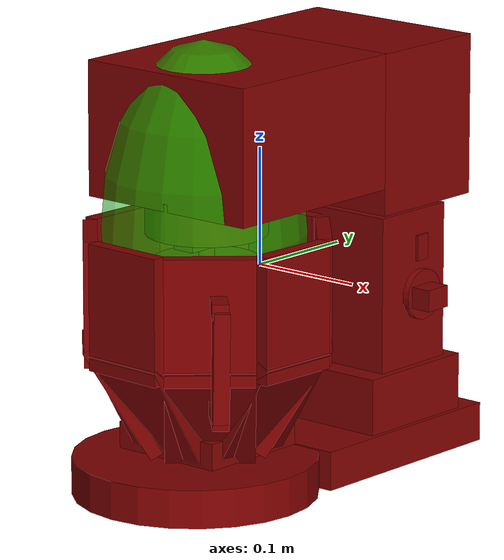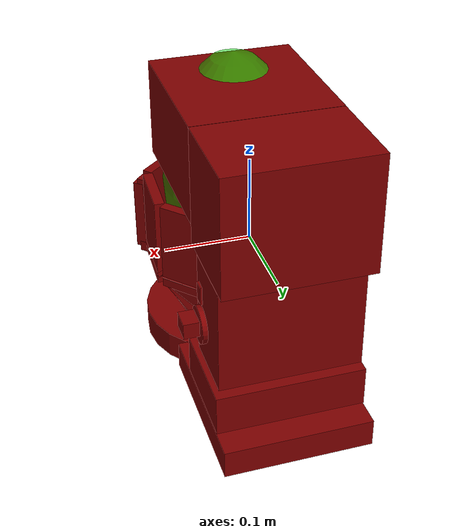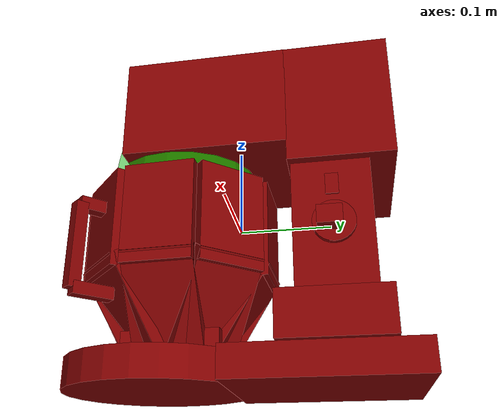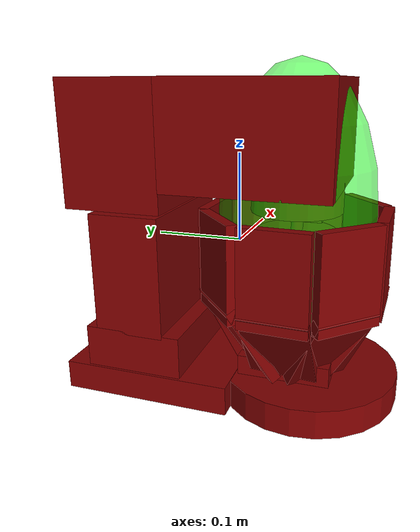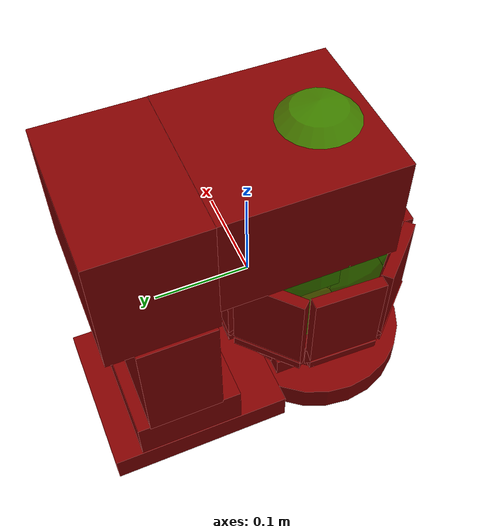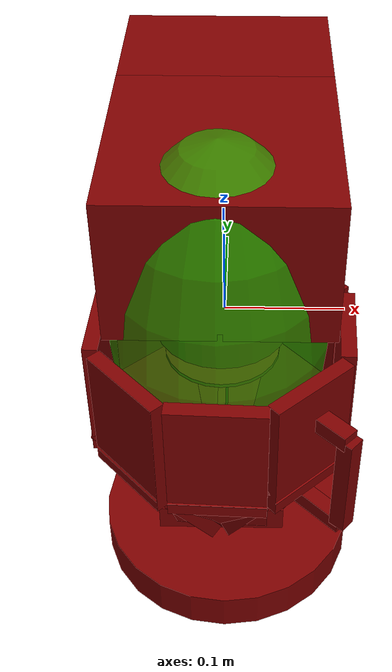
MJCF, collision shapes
<?xml version='1.0' encoding='UTF-8'?>
<mujoco model="model">
  <option timestep="0.002" gravity="0.0 0.0 -9.81"/>
  <compiler angle="radian"/>
  <asset>
    <mesh file="visuals/blender.obj" name="blender_vis"/>
    <mesh file="visuals/bowl.obj" name="bowl_vis"/>
    <mesh file="visuals/button_head_lock.obj" name="button_head_lock_vis"/>
    <mesh file="visuals/head.obj" name="head_vis"/>
    <mesh file="visuals/knob_speed.obj" name="knob_speed_vis"/>
    <mesh file="visuals/Body001.obj" name="Body001_vis"/>
    <texture file="visuals/T_BC001.png" name="Body001_material" type="2d"/>
    <material name="Body001_material" rgba="1 1 1 1.0" texture="Body001_material" shininess="0.6150577068328857" specular="1"/>
    <texture file="visuals/T_BC001.png" name="bowl_material" type="2d"/>
    <material name="bowl_material" rgba="1 1 1 1.0" texture="bowl_material" shininess="0.2150577068328857" specular="0.8"/>
    <texture file="visuals/T_BC001.png" name="button_head_lock_material" type="2d"/>
    <material name="button_head_lock_material" rgba="1 1 1 1.0" texture="button_head_lock_material" shininess="0.6150577068328857" specular="0.3103448502657381"/>
    <texture file="visuals/T_BC001.png" name="head_material" type="2d"/>
    <material name="head_material" rgba="1 1 1 1.0" texture="head_material" shininess="0.6150577068328857" specular="0.81"/>
    <texture file="visuals/T_BC001.png" name="blender_material" type="2d"/>
    <material name="blender_material" rgba="1 1 1 1.0" texture="blender_material" shininess="0.6150577068328857" specular="1"/>
    <texture file="visuals/T_BC001.png" name="knob_speed_material" type="2d"/>
    <material name="knob_speed_material" rgba="1 1 1 1.0" texture="knob_speed_material" shininess="0.6150577068328857" specular="0.3103448502657381"/>
  </asset>
  <default>
    <default class="visual">
      <geom conaffinity="0" contype="0" group="1" type="mesh"/>
    </default>
    <default class="collision">
      <geom group="0" rgba="0.5 0 0 0.5"/>
    </default>
    <default class="spawn">
      <geom group="0" rgba="1 1 1 0.5" contype="0" conaffinity="0"/>
      <site group="0" rgba="1 1 1 0.5"/>
    </default>
    <default class="region">
      <geom group="1" conaffinity="0" contype="0" rgba="0 1 0 0"/>
    </default>
  </default>
  <worldbody>
    <body>
      <body name="object">
        <geom mesh="Body001_vis" type="mesh" solimp="0.998 0.998 0.001" solref="0.001 1" friction="0.95 0.3 0.1" class="visual" material="Body001_material"/>
        <geom type="cylinder" pos="0.003460519015789032 -0.0849916860461235 -0.1610846072435379" size="0.10266918689012527 0.016178524121642113" quat="0.7071068286895752 0.0 0.0 0.7071067690849304" class="collision"/>
        <geom type="box" pos="0.0007541850209236145 0.08873350918292999 -0.16065005958080292" size="0.08596988767385483 0.09872075915336609 0.016632359474897385" quat="1.0 0.0 0.0 0.0" class="collision"/>
        <geom type="box" pos="0.0007541850209236145 0.10066592693328857 -0.11781147867441177" size="0.08596987277269363 0.056856244802474976 0.02410605363547802" quat="1.0 0.0 0.0 0.0" class="collision"/>
        <geom type="box" pos="-0.002644643187522888 0.10392031073570251 -0.028685398399829865" size="0.08257105201482773 0.0402195081114769 0.06867597997188568" quat="1.0 0.0 0.0 0.0" class="collision"/>
        <body name="bowl">
          <geom mesh="bowl_vis" type="mesh" solimp="0.998 0.998 0.001" solref="0.001 1" friction="0.95 0.3 0.1" class="visual" material="bowl_material"/>
          <geom type="box" pos="0.09577890485525131 -0.06873269379138947 -0.010495379567146301" size="0.03732758015394211 0.005964502226561308 0.05343107879161835" quat="0.7229249477386475 0.0 0.0 0.6909265518188477" class="collision"/>
          <geom type="box" pos="0.07019632309675217 -0.06757412850856781 -0.09441077709197998" size="0.03732758015394211 0.005964502226561308 0.05343107879161835" quat="0.6964244842529297 0.19394183158874512 0.1853574812412262 0.6655990481376648" class="collision"/>
          <geom type="box" pos="0.050625551491975784 -0.017625704407691956 -0.09441077709197998" size="0.03732758015394211 0.005964501760900021 0.05343107879161835" quat="0.38930678367614746 0.10841494798660278 0.24539148807525635 0.8811750411987305" class="collision"/>
          <geom type="box" pos="0.06955821067094803 -0.00038145482540130615 -0.010495379567146301" size="0.03732758015394211 0.005964502226561308 0.05343107879161835" quat="0.40412062406539917 0.0 0.0 0.9147056937217712" class="collision"/>
          <geom type="box" pos="0.0009639021009206772 0.029535599052906036 -0.010495379567146301" size="0.03732758015394211 0.005964502226561308 0.05343107879161835" quat="0.014805447310209274 0.0 0.0 0.9998903870582581" class="collision"/>
          <geom type="box" pos="0.00020568561740219593 0.003938035108149052 -0.09441077709197998" size="0.03732758015394211 0.005964502226561308 0.05343107879161835" quat="0.014262717217206955 0.003971923608332872 0.26824429631233215 0.9632371664047241" class="collision"/>
          <geom type="box" pos="-0.04840046539902687 -0.01541125401854515 -0.09441077709197998" size="0.03732758015394211 0.005964502226561308 0.05343107879161835" quat="0.3456428349018097 0.0962553396821022 -0.2504110634326935 -0.8991997838020325" class="collision"/>
          <geom type="box" pos="-0.06555350869894028 0.0036040879786014557 -0.010495379567146301" size="0.03732758015394211 0.005964502226561308 0.05343107879161835" quat="0.3587951958179474 0.0 -0.0 -0.9334163069725037" class="collision"/>
          <geom type="box" pos="-0.09579715132713318 -0.0646655336022377 -0.010495379567146301" size="0.03732758015394211 0.005964502226561308 0.05343107879161835" quat="0.6941573023796082 0.0 -0.0 -0.7198233604431152" class="collision"/>
          <geom type="box" pos="-0.07020523399114609 -0.06559489667415619 -0.09441077709197998" size="0.03732757642865181 0.005964502226561308 0.05343107879161835" quat="0.6687114238739014 0.18622416257858276 -0.1931096762418747 -0.6934365630149841" class="collision"/>
          <geom type="box" pos="-0.04966125637292862 -0.11589860916137695 -0.09441077709197998" size="0.03732758015394211 0.005964502226561308 0.05343107879161835" quat="0.8849525451660156 0.24644345045089722 -0.10600192099809647 -0.3806418180465698" class="collision"/>
          <geom type="box" pos="-0.06825187802314758 -0.13351109623908997 -0.010495379567146301" size="0.03732758015394211 0.005964502226561308 0.05343107879161835" quat="0.9186269044876099 0.0 -0.0 -0.3951260447502136" class="collision"/>
          <geom type="box" pos="-0.0016660839319229126 -0.16206619143486023 -0.010495379567146301" size="0.03732758015394211 0.005964502226561308 0.05343107879161835" quat="0.9998294115066528 0.0 -0.0 -0.01846950501203537" class="collision"/>
          <geom type="box" pos="-0.0007202774286270142 -0.1364748775959015 -0.09441076964139938" size="0.03732758015394211 0.005964502226561308 0.05343107879161835" quat="0.9631783962249756 0.2682279348373413 -0.004954892210662365 -0.017792508006095886" class="collision"/>
          <geom type="box" pos="0.048427045345306396 -0.11710363626480103 -0.09441076964139938" size="0.03732758015394211 0.005964502226561308 0.05343107879161835" quat="0.8991093635559082 0.2503858208656311 0.09632080048322678 0.345878005027771" class="collision"/>
          <geom type="box" pos="0.0655900239944458 -0.13611000776290894 -0.010495379567146301" size="0.03732758015394211 0.005964502226561308 0.05343107879161835" quat="0.9333224296569824 0.0 0.0 0.35903939604759216" class="collision"/>
          <geom type="box" pos="0.08426949381828308 -0.14564931392669678 0.0063903117552399635" size="0.0066782101057469845 0.01395743153989315 0.006678210571408272" quat="0.9218466281890869 0.0 0.0 0.38755494356155396" class="collision"/>
          <geom type="box" pos="0.09352481365203857 -0.15466591715812683 -0.03930659592151642" size="0.006678210571408272 0.04591038078069687 0.006678210571408272" quat="0.6440426111221313 0.6409761309623718 0.2982119619846344 0.29228127002716064" class="collision"/>
          <geom type="box" pos="0.07861623167991638 -0.1401141732931137 -0.08530610799789429" size="0.0066782101057469845 0.02186926268041134 0.006678210571408272" quat="0.9218466281890869 0.0 0.0 0.38755494356155396" class="collision"/>
          <geom type="box" pos="-0.0007026446983218193 -0.06551114469766617 -0.1315988451242447" size="0.051356516778469086 0.051356516778469086 0.011334642767906189" quat="1.0 0.0 0.0 0.0" class="collision"/>
          <geom name="reg_bowl" type="ellipsoid" pos="-0.0021129229571670294 -0.06722154468297958 0.04105578735470772" size="0.08472844213247299 0.08634301275014877 0.1604800671339035" rgba="0 1 0 0.5" class="region"/>
        </body>
        <body name="button_head_lock">
          <joint axis="-1.0 0.0 0.0" pos="0.08683105558156967 0.10489334166049957 0.010110207833349705" limited="true" name="button_head_lock_joint" range="0.0 0.003" type="slide" damping="1" frictionloss="1" armature=".01" stiffness="0.2" springref="-0.00"/>
          <geom mesh="button_head_lock_vis" type="mesh" solimp="0.998 0.998 0.001" solref="0.001 1" friction="0.95 0.3 0.1" class="visual" material="button_head_lock_material"/>
          <geom class="collision" type="box" pos="0.08823489397764206 0.1049036830663681 0.00974784791469574" size="0.0011522301938384771 0.00662582740187645 0.010949372313916683" quat="1.0 0.0 0.0 0.0" name="button_head_lock_main"/>
        </body>
        <body name="head">
          <joint axis="-1.0 0.0 0.0" pos="1.0754204637919429e-08 0.14244376122951508 0.04130365327000618" limited="true" name="head_joint" range="0.0 1.5707963267948966" type="hinge" damping="1" frictionloss="1" armature=".01" stiffness="0.05"/>
          <geom mesh="head_vis" type="mesh" solimp="0.998 0.998 0.001" solref="0.001 1" friction="0.95 0.3 0.1" class="visual" material="head_material"/>
          <geom type="box" pos="0.00042625516653060913 -0.06595133244991302 0.036875221878290176" size="0.010289306752383709 0.029734713956713676 0.007034998387098312" quat="1.0 0.0 0.0 0.0" class="collision"/>
          <geom type="box" pos="-8.922815322875977e-05 0.11617272347211838 0.11218898743391037" size="0.08439835906028748 0.055622946470975876 0.06867597997188568" quat="1.0 0.0 0.0 0.0" class="collision"/>
          <geom type="cylinder" pos="0.0 -0.06626210361719131 0.056532151997089386" size="0.05091654881834984 0.0164863932877779" quat="0.7071068286895752 0.0 0.0 0.7071067690849304" class="collision"/>
          <geom type="box" pos="-8.924119174480438e-05 -0.027804773300886154 0.12384510040283203" size="0.08439836651086807 0.08912069350481033 0.05735771358013153" quat="1.0 0.0 0.0 0.0" class="collision"/>
          <body name="blender">
            <joint axis="0.0 0.0 1.0" pos="-1.7672549802227877e-05 -0.06669911742210388 -0.026015812531113625" limited="false" name="blender_joint" range="0 360" type="hinge" damping="1" frictionloss="1" armature=".01" stiffness="0.05"/>
            <geom mesh="blender_vis" type="mesh" solimp="0.998 0.998 0.001" solref="0.001 1" friction="0.95 0.3 0.1" class="visual" material="blender_material"/>
            <geom type="cylinder" pos="-8.93324613571167e-06 -0.06668905913829803 0.016672706231474876" size="0.044408053159713745 0.0015562321059405804" quat="0.7071068286895752 0.0 0.0 0.7071067690849304" class="collision"/>
            <geom type="cylinder" pos="-8.93324613571167e-06 -0.06668905913829803 0.010099751874804497" size="0.006662769243121147 0.022094683721661568" quat="0.7071068286895752 0.0 0.0 0.7071067690849304" class="collision"/>
            <geom type="box" pos="5.398690700531006e-05 -0.06601007282733917 -0.04471845179796219" size="0.0030582661274820566 0.046690359711647034 0.0377962552011013" quat="1.0 0.0 0.0 0.0" class="collision"/>
          </body>
        </body>
        <body name="knob_speed">
          <joint axis="-1.0 0.0 0.0" pos="0.09186919778585434 0.10499929636716843 -0.03084498643875122" limited="true" name="knob_speed_joint" range="0.0 5.288347633542818" type="hinge" damping="0.05" armature="0.001"/>
          <geom mesh="knob_speed_vis" type="mesh" solimp="0.998 0.998 0.001" solref="0.001 1" friction="0.95 0.3 0.1" class="visual" material="knob_speed_material"/>
          <geom type="cylinder" pos="0.08847013860940933 0.10506120324134827 -0.030731894075870514" size="0.02145657129585743 0.002870349446311593" quat="0.5000000596046448 0.5 0.4999999701976776 0.5" class="collision"/>
          <geom class="collision" type="box" pos="0.10003703087568283 0.10141026228666306 -0.030731894075870514" size="0.009205687791109085 0.012417934834957123 0.009205687791109085" quat="1.0 0.0 0.0 0.0" name="knob_speed_main"/>
        </body>
        <geom class="region" name="reg_main" type="box" pos="1.564621925354004e-05 0.0 7.450580596923828e-09" size="0.09994803166389465 0.18822178041934967 0.17863414978981018"/>
      </body>
    </body>
  </worldbody>
  <actuator>
    <motor name="button_head_lock_joint_actuator" joint="button_head_lock_joint" gear="0.5"/>
    <motor name="head_joint_actuator" joint="head_joint" gear="20"/>
    <motor name="knob_speed_joint_actuator" joint="knob_speed_joint" gear="8"/>
    <motor name="blender_joint_actuator" joint="blender_joint" gear="20"/>
  </actuator>
</mujoco>
